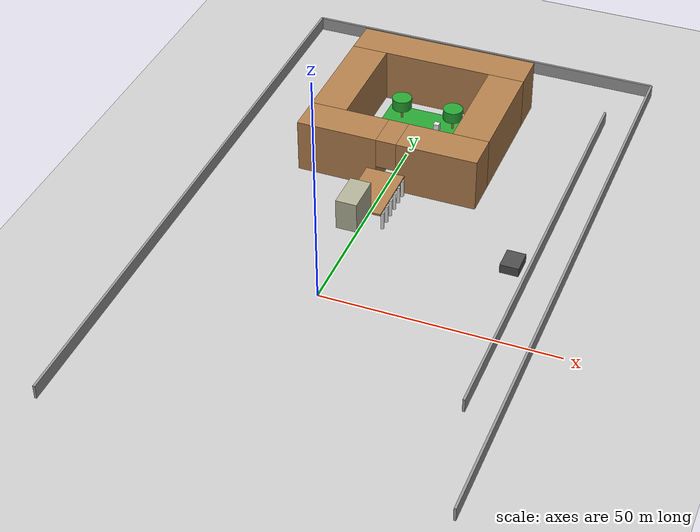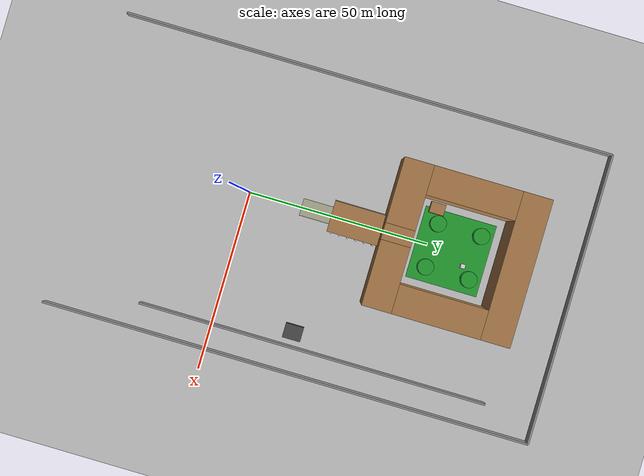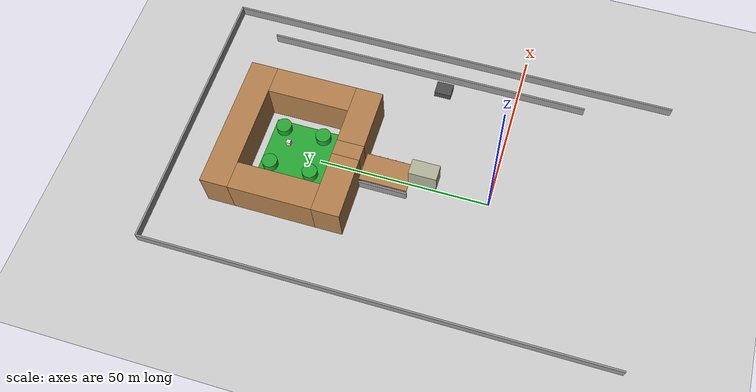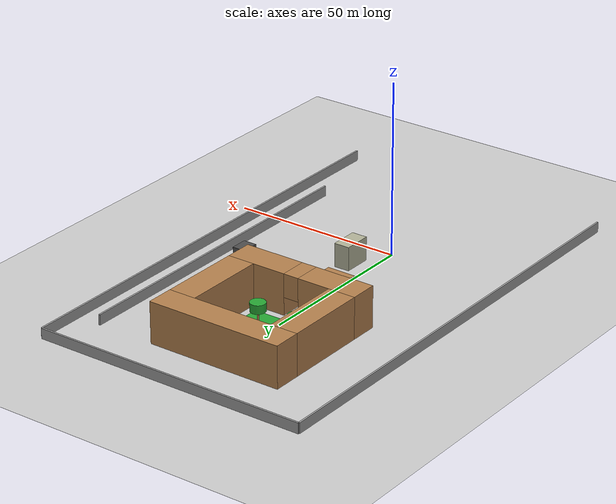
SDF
<sdf version="1.6">
 <world name="oxford_college">
  <include><uri>model://sun</uri></include>
  <include><uri>model://ground_plane</uri></include>
  <model name="front_north_lintel">
   <static>true</static>
   <pose>0.000 19.000 8.600 0 0 0.0000</pose>
   <link name="link">
    <collision name="collision">
     <geometry><box><size>4.500 8.000 6.800</size></box></geometry>
     <surface><friction><ode><mu>0.9</mu><mu2>0.9</mu2></ode></friction></surface>
    </collision>
    <visual name="visual">
     <geometry><box><size>4.500 8.000 6.800</size></box></geometry>
     <material>
      <script><uri>file://media/materials/scripts/gazebo.material</uri><name>Gazebo/Residential</name></script>
     </material>
    </visual>
   </link>
  </model>
  <model name="second_south_a">
   <static>true</static>
   <pose>-11.125 41.000 6.000 0 0 0.0000</pose>
   <link name="link">
    <collision name="collision">
     <geometry><box><size>17.750 8.000 12.000</size></box></geometry>
     <surface><friction><ode><mu>0.9</mu><mu2>0.9</mu2></ode></friction></surface>
    </collision>
    <visual name="visual">
     <geometry><box><size>17.750 8.000 12.000</size></box></geometry>
     <material>
      <script><uri>file://media/materials/scripts/gazebo.material</uri><name>Gazebo/Wood</name></script>
     </material>
    </visual>
   </link>
  </model>
  <model name="second_south_b">
   <static>true</static>
   <pose>11.125 41.000 6.000 0 0 0.0000</pose>
   <link name="link">
    <collision name="collision">
     <geometry><box><size>17.750 8.000 12.000</size></box></geometry>
     <surface><friction><ode><mu>0.9</mu><mu2>0.9</mu2></ode></friction></surface>
    </collision>
    <visual name="visual">
     <geometry><box><size>17.750 8.000 12.000</size></box></geometry>
     <material>
      <script><uri>file://media/materials/scripts/gazebo.material</uri><name>Gazebo/Wood</name></script>
     </material>
    </visual>
   </link>
  </model>
  <model name="second_south_lintel">
   <static>true</static>
   <pose>0.000 41.000 8.600 0 0 0.0000</pose>
   <link name="link">
    <collision name="collision">
     <geometry><box><size>4.500 8.000 6.800</size></box></geometry>
     <surface><friction><ode><mu>0.9</mu><mu2>0.9</mu2></ode></friction></surface>
    </collision>
    <visual name="visual">
     <geometry><box><size>4.500 8.000 6.800</size></box></geometry>
     <material>
      <script><uri>file://media/materials/scripts/gazebo.material</uri><name>Gazebo/Wood</name></script>
     </material>
    </visual>
   </link>
  </model>
  <model name="second_north">
   <static>true</static>
   <pose>0.000 73.000 6.000 0 0 0.0000</pose>
   <link name="link">
    <collision name="collision">
     <geometry><box><size>40.000 8.000 12.000</size></box></geometry>
     <surface><friction><ode><mu>0.9</mu><mu2>0.9</mu2></ode></friction></surface>
    </collision>
    <visual name="visual">
     <geometry><box><size>40.000 8.000 12.000</size></box></geometry>
     <material>
      <script><uri>file://media/materials/scripts/gazebo.material</uri><name>Gazebo/Wood</name></script>
     </material>
    </visual>
   </link>
  </model>
  <model name="second_west">
   <static>true</static>
   <pose>-16.000 57.000 6.000 0 0 0.0000</pose>
   <link name="link">
    <collision name="collision">
     <geometry><box><size>8.000 24.000 12.000</size></box></geometry>
     <surface><friction><ode><mu>0.9</mu><mu2>0.9</mu2></ode></friction></surface>
    </collision>
    <visual name="visual">
     <geometry><box><size>8.000 24.000 12.000</size></box></geometry>
     <material>
      <script><uri>file://media/materials/scripts/gazebo.material</uri><name>Gazebo/Wood</name></script>
     </material>
    </visual>
   </link>
  </model>
  <model name="second_east">
   <static>true</static>
   <pose>16.000 57.000 6.000 0 0 0.0000</pose>
   <link name="link">
    <collision name="collision">
     <geometry><box><size>8.000 24.000 12.000</size></box></geometry>
     <surface><friction><ode><mu>0.9</mu><mu2>0.9</mu2></ode></friction></surface>
    </collision>
    <visual name="visual">
     <geometry><box><size>8.000 24.000 12.000</size></box></geometry>
     <material>
      <script><uri>file://media/materials/scripts/gazebo.material</uri><name>Gazebo/Wood</name></script>
     </material>
    </visual>
   </link>
  </model>
  <model name="second_lawn">
   <static>true</static>
   <pose>0.000 57.000 0.005 0 0 0.0000</pose>
   <link name="link">
    <collision name="collision">
     <geometry><box><size>20.000 20.000 0.010</size></box></geometry>
     <surface><friction><ode><mu>0.9</mu><mu2>0.9</mu2></ode></friction></surface>
    </collision>
    <visual name="visual">
     <geometry><box><size>20.000 20.000 0.010</size></box></geometry>
     <material>
      <script><uri>file://media/materials/scripts/gazebo.material</uri><name>Gazebo/Green</name></script>
     </material>
    </visual>
   </link>
  </model>
  <model name="cloister_wall_w">
   <static>true</static>
   <pose>-4.250 30.000 1.500 0 0 0.0000</pose>
   <link name="link">
    <collision name="collision">
     <geometry><box><size>0.500 14.000 3.000</size></box></geometry>
     <surface><friction><ode><mu>0.9</mu><mu2>0.9</mu2></ode></friction></surface>
    </collision>
    <visual name="visual">
     <geometry><box><size>0.500 14.000 3.000</size></box></geometry>
     <material>
      <script><uri>file://media/materials/scripts/gazebo.material</uri><name>Gazebo/Grey</name></script>
     </material>
    </visual>
   </link>
  </model>
  <model name="cloister_col_0">
   <static>true</static>
   <pose>4.250 24.167 2.000 0 0 0</pose>
   <link name="link">
    <collision name="collision">
     <geometry><cylinder><radius>0.350</radius><length>4.000</length></cylinder></geometry>
    </collision>
    <visual name="visual">
     <geometry><cylinder><radius>0.350</radius><length>4.000</length></cylinder></geometry>
     <material>
      <script><uri>file://media/materials/scripts/gazebo.material</uri><name>Gazebo/White</name></script>
     </material>
    </visual>
   </link>
  </model>
  <model name="cloister_col_1">
   <static>true</static>
   <pose>4.250 26.500 2.000 0 0 0</pose>
   <link name="link">
    <collision name="collision">
     <geometry><cylinder><radius>0.350</radius><length>4.000</length></cylinder></geometry>
    </collision>
    <visual name="visual">
     <geometry><cylinder><radius>0.350</radius><length>4.000</length></cylinder></geometry>
     <material>
      <script><uri>file://media/materials/scripts/gazebo.material</uri><name>Gazebo/White</name></script>
     </material>
    </visual>
   </link>
  </model>
  <model name="cloister_col_2">
   <static>true</static>
   <pose>4.250 28.833 2.000 0 0 0</pose>
   <link name="link">
    <collision name="collision">
     <geometry><cylinder><radius>0.350</radius><length>4.000</length></cylinder></geometry>
    </collision>
    <visual name="visual">
     <geometry><cylinder><radius>0.350</radius><length>4.000</length></cylinder></geometry>
     <material>
      <script><uri>file://media/materials/scripts/gazebo.material</uri><name>Gazebo/White</name></script>
     </material>
    </visual>
   </link>
  </model>
  <model name="cloister_col_3">
   <static>true</static>
   <pose>4.250 31.167 2.000 0 0 0</pose>
   <link name="link">
    <collision name="collision">
     <geometry><cylinder><radius>0.350</radius><length>4.000</length></cylinder></geometry>
    </collision>
    <visual name="visual">
     <geometry><cylinder><radius>0.350</radius><length>4.000</length></cylinder></geometry>
     <material>
      <script><uri>file://media/materials/scripts/gazebo.material</uri><name>Gazebo/White</name></script>
     </material>
    </visual>
   </link>
  </model>
  <model name="cloister_col_4">
   <static>true</static>
   <pose>4.250 33.500 2.000 0 0 0</pose>
   <link name="link">
    <collision name="collision">
     <geometry><cylinder><radius>0.350</radius><length>4.000</length></cylinder></geometry>
    </collision>
    <visual name="visual">
     <geometry><cylinder><radius>0.350</radius><length>4.000</length></cylinder></geometry>
     <material>
      <script><uri>file://media/materials/scripts/gazebo.material</uri><name>Gazebo/White</name></script>
     </material>
    </visual>
   </link>
  </model>
  <model name="cloister_col_5">
   <static>true</static>
   <pose>4.250 35.833 2.000 0 0 0</pose>
   <link name="link">
    <collision name="collision">
     <geometry><cylinder><radius>0.350</radius><length>4.000</length></cylinder></geometry>
    </collision>
    <visual name="visual">
     <geometry><cylinder><radius>0.350</radius><length>4.000</length></cylinder></geometry>
     <material>
      <script><uri>file://media/materials/scripts/gazebo.material</uri><name>Gazebo/White</name></script>
     </material>
    </visual>
   </link>
  </model>
  <model name="cloister_roof">
   <static>true</static>
   <pose>0.000 30.000 4.200 0 0 0.0000</pose>
   <link name="link">
    <collision name="collision">
     <geometry><box><size>8.500 14.000 0.400</size></box></geometry>
     <surface><friction><ode><mu>0.9</mu><mu2>0.9</mu2></ode></friction></surface>
    </collision>
    <visual name="visual">
     <geometry><box><size>8.500 14.000 0.400</size></box></geometry>
     <material>
      <script><uri>file://media/materials/scripts/gazebo.material</uri><name>Gazebo/Wood</name></script>
     </material>
    </visual>
   </link>
  </model>
  <model name="service_wall_e">
   <static>true</static>
   <pose>37.000 28.500 1.500 0 0 0.0000</pose>
   <link name="link">
    <collision name="collision">
     <geometry><box><size>0.500 97.000 3.000</size></box></geometry>
     <surface><friction><ode><mu>0.9</mu><mu2>0.9</mu2></ode></friction></surface>
    </collision>
    <visual name="visual">
     <geometry><box><size>0.500 97.000 3.000</size></box></geometry>
     <material>
      <script><uri>file://media/materials/scripts/gazebo.material</uri><name>Gazebo/Grey</name></script>
     </material>
    </visual>
   </link>
  </model>
  <model name="bin_store">
   <static>true</static>
   <pose>33.000 22.000 1.000 0 0 0.0000</pose>
   <link name="link">
    <collision name="collision">
     <geometry><box><size>4.000 5.000 2.000</size></box></geometry>
     <surface><friction><ode><mu>0.9</mu><mu2>0.9</mu2></ode></friction></surface>
    </collision>
    <visual name="visual">
     <geometry><box><size>4.000 5.000 2.000</size></box></geometry>
     <material>
      <script><uri>file://media/materials/scripts/gazebo.material</uri><name>Gazebo/DarkGrey</name></script>
     </material>
    </visual>
   </link>
  </model>
  <model name="tree_trunk_0">
   <static>true</static>
   <pose>-6.000 51.000 1.500 0 0 0</pose>
   <link name="link">
    <collision name="collision">
     <geometry><cylinder><radius>0.220</radius><length>3.000</length></cylinder></geometry>
    </collision>
    <visual name="visual">
     <geometry><cylinder><radius>0.220</radius><length>3.000</length></cylinder></geometry>
     <material>
      <script><uri>file://media/materials/scripts/gazebo.material</uri><name>Gazebo/Wood</name></script>
     </material>
    </visual>
   </link>
  </model>
  <model name="tree_crown_0">
   <static>true</static>
   <pose>-6.000 51.000 4.000 0 0 0</pose>
   <link name="link">
    <collision name="collision">
     <geometry><cylinder><radius>2.200</radius><length>2.500</length></cylinder></geometry>
    </collision>
    <visual name="visual">
     <geometry><cylinder><radius>2.200</radius><length>2.500</length></cylinder></geometry>
     <material>
      <script><uri>file://media/materials/scripts/gazebo.material</uri><name>Gazebo/Green</name></script>
     </material>
    </visual>
   </link>
  </model>
  <model name="tree_trunk_1">
   <static>true</static>
   <pose>6.000 51.000 1.500 0 0 0</pose>
   <link name="link">
    <collision name="collision">
     <geometry><cylinder><radius>0.220</radius><length>3.000</length></cylinder></geometry>
    </collision>
    <visual name="visual">
     <geometry><cylinder><radius>0.220</radius><length>3.000</length></cylinder></geometry>
     <material>
      <script><uri>file://media/materials/scripts/gazebo.material</uri><name>Gazebo/Wood</name></script>
     </material>
    </visual>
   </link>
  </model>
  <model name="tree_crown_1">
   <static>true</static>
   <pose>6.000 51.000 4.000 0 0 0</pose>
   <link name="link">
    <collision name="collision">
     <geometry><cylinder><radius>2.200</radius><length>2.500</length></cylinder></geometry>
    </collision>
    <visual name="visual">
     <geometry><cylinder><radius>2.200</radius><length>2.500</length></cylinder></geometry>
     <material>
      <script><uri>file://media/materials/scripts/gazebo.material</uri><name>Gazebo/Green</name></script>
     </material>
    </visual>
   </link>
  </model>
  <model name="tree_trunk_2">
   <static>true</static>
   <pose>-6.000 63.000 1.500 0 0 0</pose>
   <link name="link">
    <collision name="collision">
     <geometry><cylinder><radius>0.220</radius><length>3.000</length></cylinder></geometry>
    </collision>
    <visual name="visual">
     <geometry><cylinder><radius>0.220</radius><length>3.000</length></cylinder></geometry>
     <material>
      <script><uri>file://media/materials/scripts/gazebo.material</uri><name>Gazebo/Wood</name></script>
     </material>
    </visual>
   </link>
  </model>
  <model name="tree_crown_2">
   <static>true</static>
   <pose>-6.000 63.000 4.000 0 0 0</pose>
   <link name="link">
    <collision name="collision">
     <geometry><cylinder><radius>2.200</radius><length>2.500</length></cylinder></geometry>
    </collision>
    <visual name="visual">
     <geometry><cylinder><radius>2.200</radius><length>2.500</length></cylinder></geometry>
     <material>
      <script><uri>file://media/materials/scripts/gazebo.material</uri><name>Gazebo/Green</name></script>
     </material>
    </visual>
   </link>
  </model>
  <model name="tree_trunk_3">
   <static>true</static>
   <pose>6.000 63.000 1.500 0 0 0</pose>
   <link name="link">
    <collision name="collision">
     <geometry><cylinder><radius>0.220</radius><length>3.000</length></cylinder></geometry>
    </collision>
    <visual name="visual">
     <geometry><cylinder><radius>0.220</radius><length>3.000</length></cylinder></geometry>
     <material>
      <script><uri>file://media/materials/scripts/gazebo.material</uri><name>Gazebo/Wood</name></script>
     </material>
    </visual>
   </link>
  </model>
  <model name="tree_crown_3">
   <static>true</static>
   <pose>6.000 63.000 4.000 0 0 0</pose>
   <link name="link">
    <collision name="collision">
     <geometry><cylinder><radius>2.200</radius><length>2.500</length></cylinder></geometry>
    </collision>
    <visual name="visual">
     <geometry><cylinder><radius>2.200</radius><length>2.500</length></cylinder></geometry>
     <material>
      <script><uri>file://media/materials/scripts/gazebo.material</uri><name>Gazebo/Green</name></script>
     </material>
    </visual>
   </link>
  </model>
  <model name="perim_n">
   <static>true</static>
   <pose>3.500 91.000 1.500 0 0 0.0000</pose>
   <link name="link">
    <collision name="collision">
     <geometry><box><size>81.000 0.500 3.000</size></box></geometry>
     <surface><friction><ode><mu>0.9</mu><mu2>0.9</mu2></ode></friction></surface>
    </collision>
    <visual name="visual">
     <geometry><box><size>81.000 0.500 3.000</size></box></geometry>
     <material>
      <script><uri>file://media/materials/scripts/gazebo.material</uri><name>Gazebo/Grey</name></script>
     </material>
    </visual>
   </link>
  </model>
  <model name="perim_w">
   <static>true</static>
   <pose>-37.000 23.000 1.500 0 0 0.0000</pose>
   <link name="link">
    <collision name="collision">
     <geometry><box><size>0.500 136.000 3.000</size></box></geometry>
     <surface><friction><ode><mu>0.9</mu><mu2>0.9</mu2></ode></friction></surface>
    </collision>
    <visual name="visual">
     <geometry><box><size>0.500 136.000 3.000</size></box></geometry>
     <material>
      <script><uri>file://media/materials/scripts/gazebo.material</uri><name>Gazebo/Grey</name></script>
     </material>
    </visual>
   </link>
  </model>
  <model name="perim_e">
   <static>true</static>
   <pose>44.000 23.000 1.500 0 0 0.0000</pose>
   <link name="link">
    <collision name="collision">
     <geometry><box><size>0.500 136.000 3.000</size></box></geometry>
     <surface><friction><ode><mu>0.9</mu><mu2>0.9</mu2></ode></friction></surface>
    </collision>
    <visual name="visual">
     <geometry><box><size>0.500 136.000 3.000</size></box></geometry>
     <material>
      <script><uri>file://media/materials/scripts/gazebo.material</uri><name>Gazebo/Grey</name></script>
     </material>
    </visual>
   </link>
  </model>
  <model name="garden_shed">
   <static>true</static>
   <pose>-10.000 50.000 1.200 0 0 0.0000</pose>
   <link name="link">
    <collision name="collision">
     <geometry><box><size>3.000 4.000 2.400</size></box></geometry>
     <surface><friction><ode><mu>0.9</mu><mu2>0.9</mu2></ode></friction></surface>
    </collision>
    <visual name="visual">
     <geometry><box><size>3.000 4.000 2.400</size></box></geometry>
     <material>
      <script><uri>file://media/materials/scripts/gazebo.material</uri><name>Gazebo/Wood</name></script>
     </material>
    </visual>
   </link>
  </model>
  <model name="statue_plinth">
   <static>true</static>
   <pose>3.000 61.000 0.900 0 0 0.0000</pose>
   <link name="link">
    <collision name="collision">
     <geometry><box><size>1.200 1.200 1.800</size></box></geometry>
     <surface><friction><ode><mu>0.9</mu><mu2>0.9</mu2></ode></friction></surface>
    </collision>
    <visual name="visual">
     <geometry><box><size>1.200 1.200 1.800</size></box></geometry>
     <material>
      <script><uri>file://media/materials/scripts/gazebo.material</uri><name>Gazebo/White</name></script>
     </material>
    </visual>
   </link>
  </model>
 </world>
</sdf>
